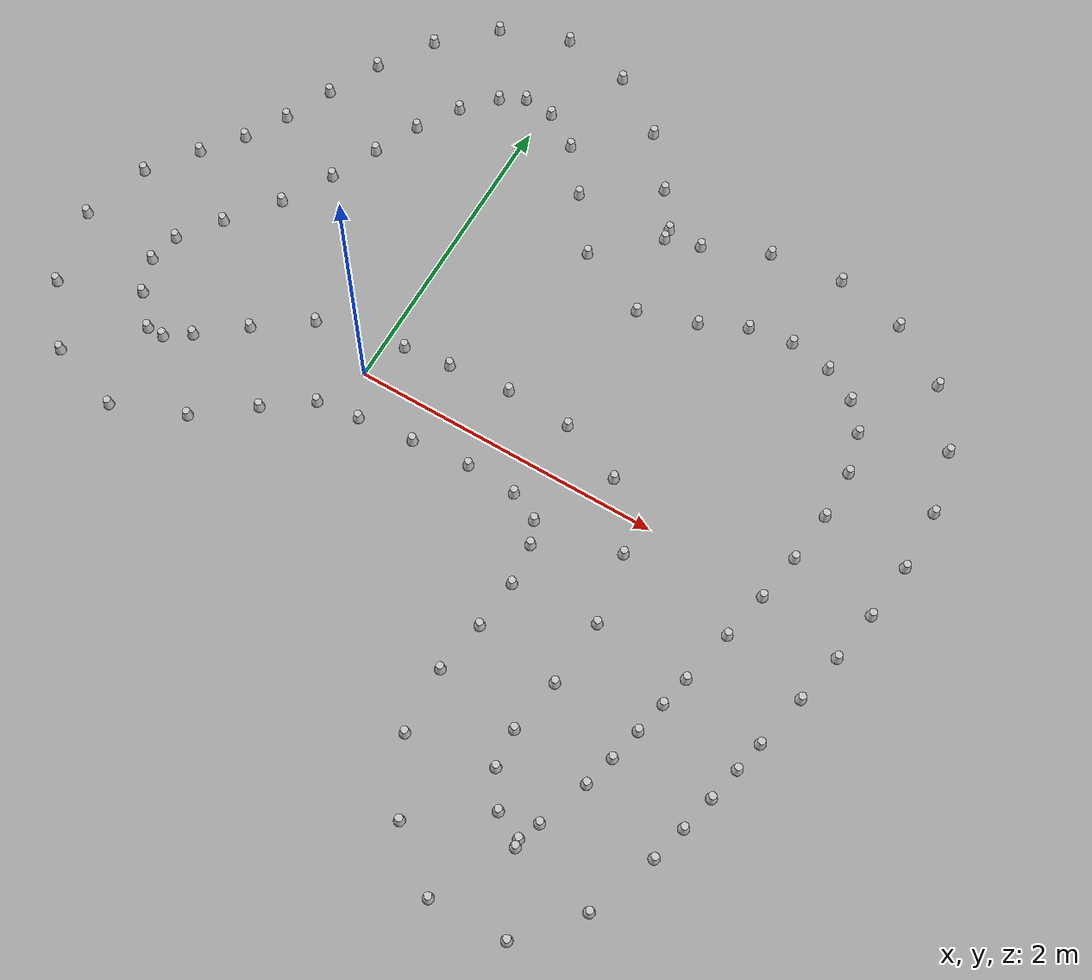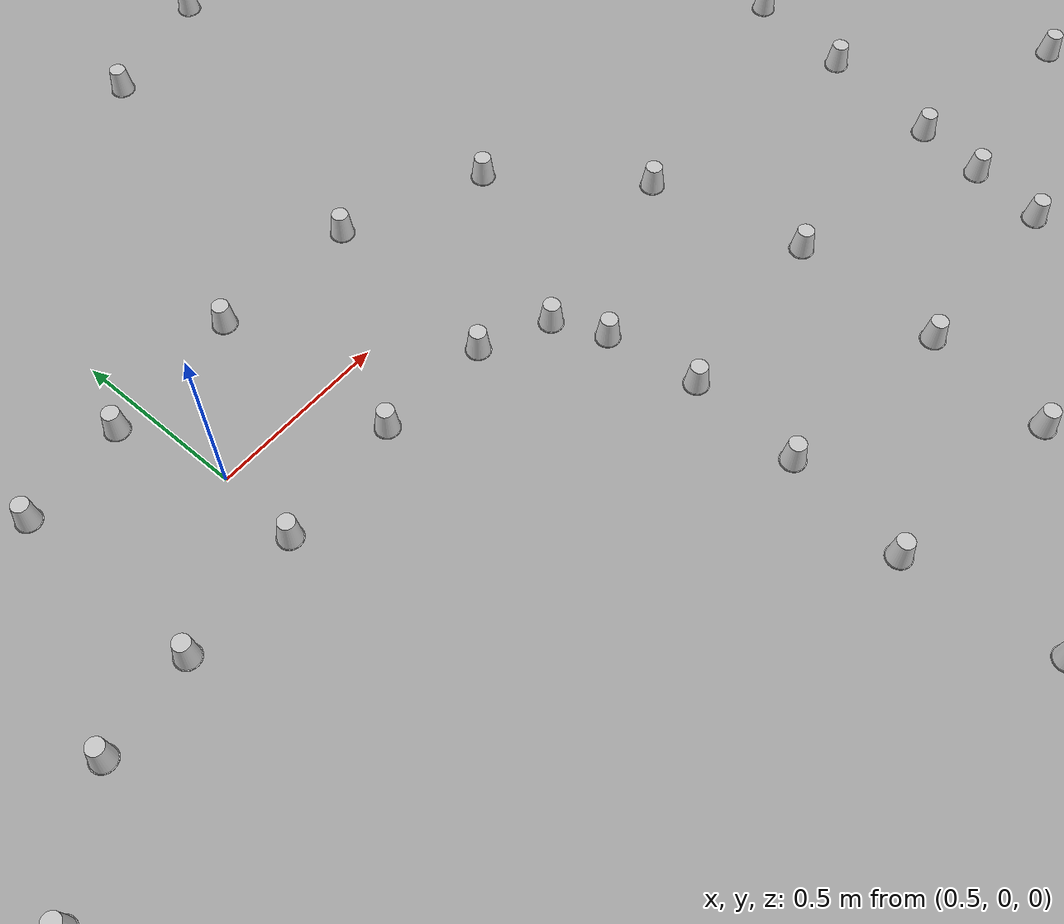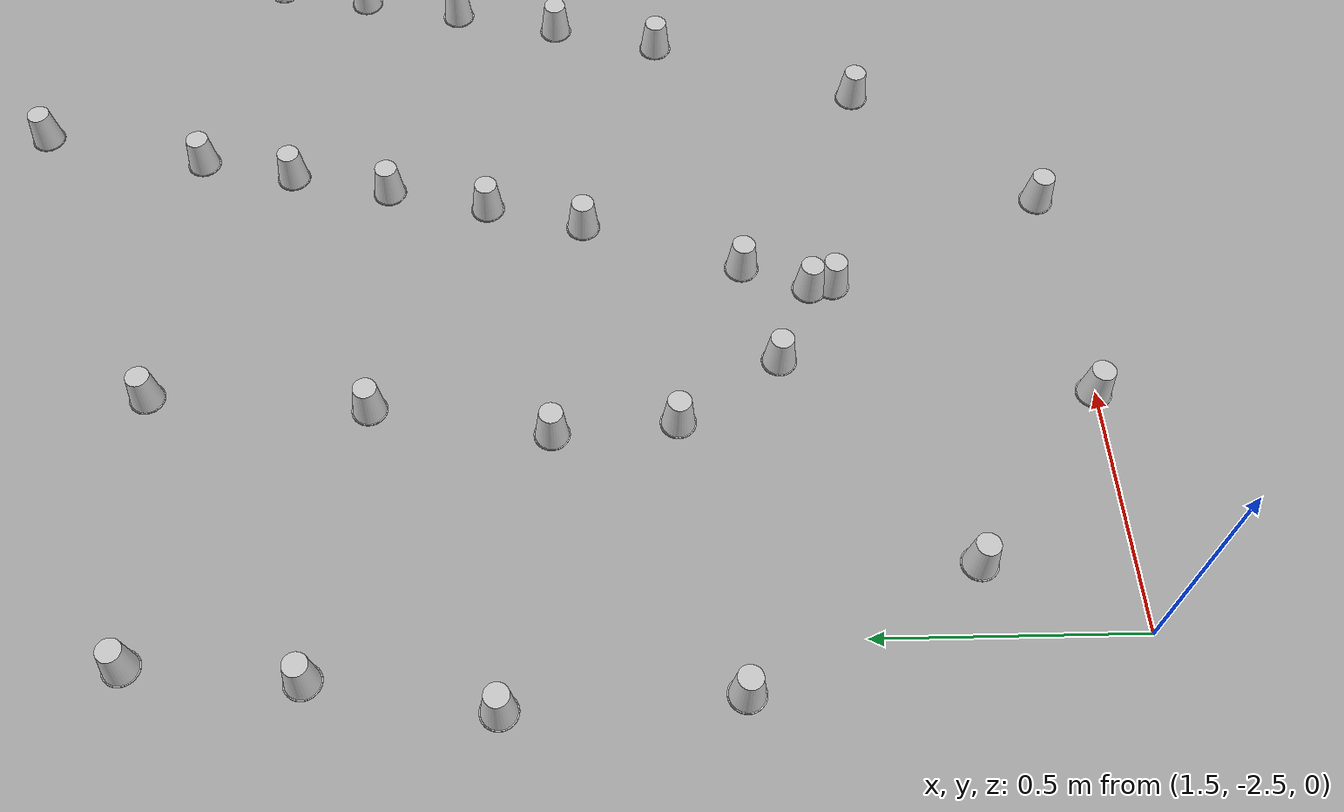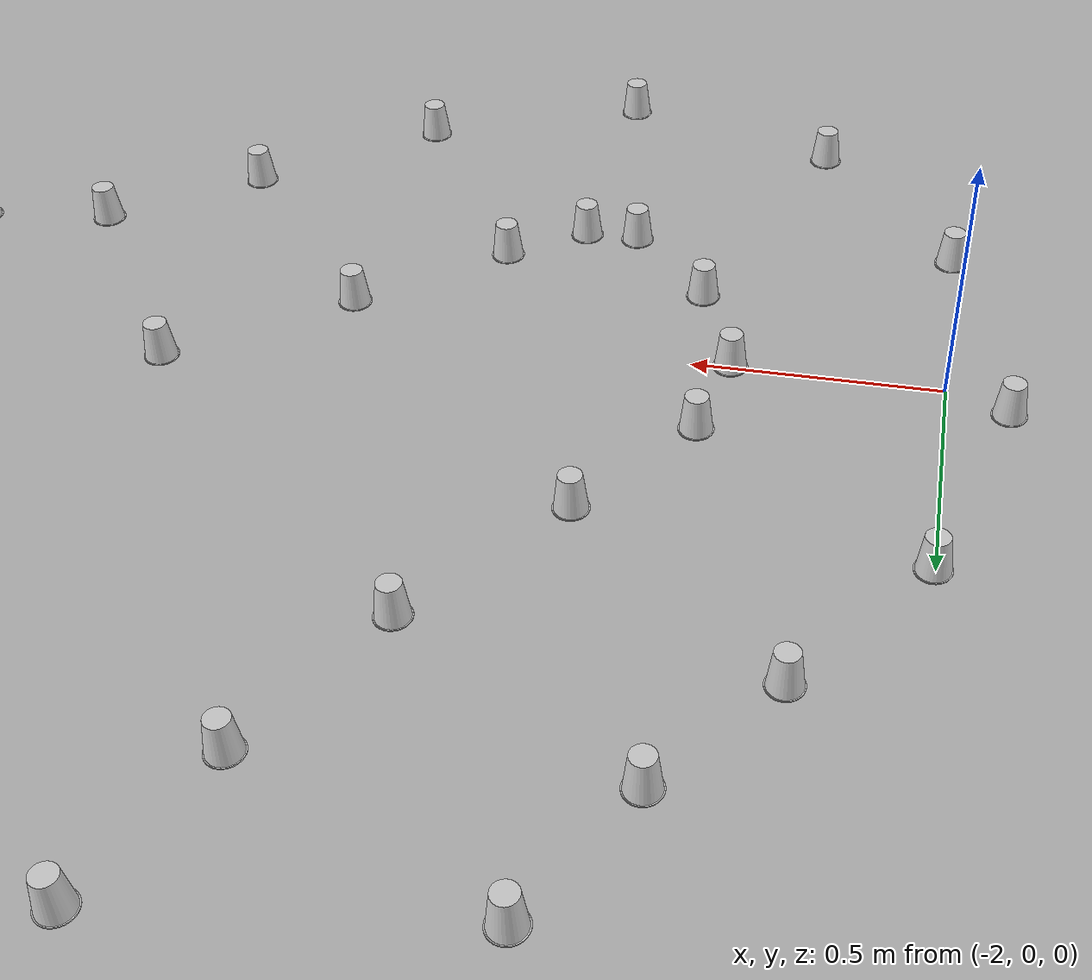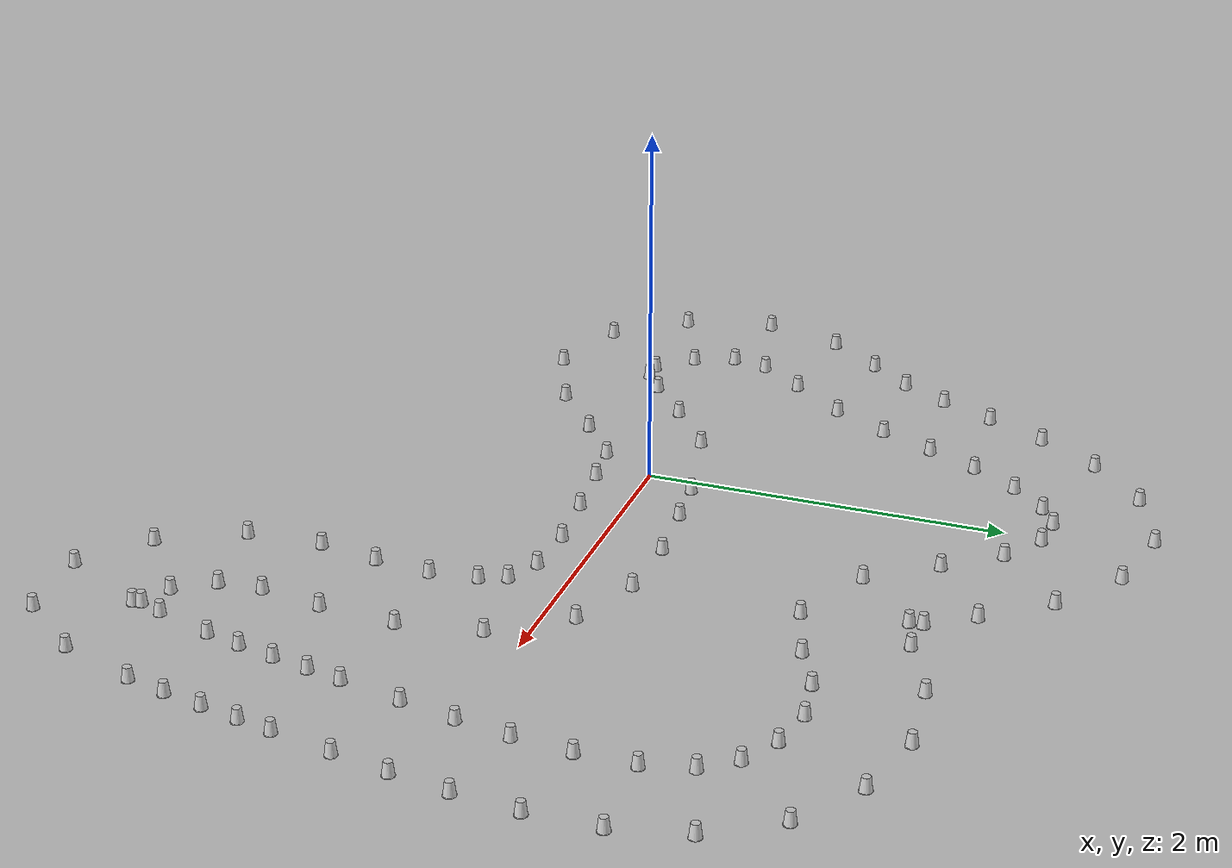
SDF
<?xml version='1.0' encoding='UTF-8'?>
<sdf version="1.4">
  <model name="some track">
    <include>
      <uri>model://cone_yellow</uri>
      <pose>0.1318042210819997 -0.2720911782986568 0 0 0 0</pose>
      <name>cone_right_0</name>
    </include>
    <include>
      <uri>model://cone_yellow</uri>
      <pose>0.49213341630767626 -0.23205659438229442 0 0 0 0</pose>
      <name>cone_right_1</name>
    </include>
    <include>
      <uri>model://cone_yellow</uri>
      <pose>0.8655149388263461 -0.19640116574429842 0 0 0 0</pose>
      <name>cone_right_2</name>
    </include>
    <include>
      <uri>model://cone_yellow</uri>
      <pose>1.1923179738679484 -0.21269540130722206 0 0 0 0</pose>
      <name>cone_right_3</name>
    </include>
    <include>
      <uri>model://cone_yellow</uri>
      <pose>1.3826189321913542 -0.30106510228389327 0 0 0 0</pose>
      <name>cone_right_4</name>
    </include>
    <include>
      <uri>model://cone_yellow</uri>
      <pose>1.4417368649751494 -0.44433717216045443 0 0 0 0</pose>
      <name>cone_right_5</name>
    </include>
    <include>
      <uri>model://cone_yellow</uri>
      <pose>1.4712281439474466 -0.7080926977826334 0 0 0 0</pose>
      <name>cone_right_6</name>
    </include>
    <include>
      <uri>model://cone_yellow</uri>
      <pose>1.4406192656695422 -1.0232461811653042 0 0 0 0</pose>
      <name>cone_right_7</name>
    </include>
    <include>
      <uri>model://cone_yellow</uri>
      <pose>1.3814540638735637 -1.3607355756623982 0 0 0 0</pose>
      <name>cone_right_8</name>
    </include>
    <include>
      <uri>model://cone_yellow</uri>
      <pose>1.4041618865034695 -1.7821163466159342 0 0 0 0</pose>
      <name>cone_right_9</name>
    </include>
    <include>
      <uri>model://cone_yellow</uri>
      <pose>1.6403589752112835 -2.2172159137455134 0 0 0 0</pose>
      <name>cone_right_10</name>
    </include>
    <include>
      <uri>model://cone_yellow</uri>
      <pose>1.9993226758221057 -2.4957548860784344 0 0 0 0</pose>
      <name>cone_right_11</name>
    </include>
    <include>
      <uri>model://cone_yellow</uri>
      <pose>2.4815303838794556 -2.4709057078714576 0 0 0 0</pose>
      <name>cone_right_12</name>
    </include>
    <include>
      <uri>model://cone_yellow</uri>
      <pose>2.7891188745378632 -2.1123374576400265 0 0 0 0</pose>
      <name>cone_right_13</name>
    </include>
    <include>
      <uri>model://cone_yellow</uri>
      <pose>2.952258020442661 -1.6790744807048517 0 0 0 0</pose>
      <name>cone_right_14</name>
    </include>
    <include>
      <uri>model://cone_yellow</uri>
      <pose>3.013284998364284 -1.450925985301922 0 0 0 0</pose>
      <name>cone_right_15</name>
    </include>
    <include>
      <uri>model://cone_yellow</uri>
      <pose>3.066219936649028 -1.2243517620697397 0 0 0 0</pose>
      <name>cone_right_16</name>
    </include>
    <include>
      <uri>model://cone_yellow</uri>
      <pose>3.1133810072825407 -1.0080536318819013 0 0 0 0</pose>
      <name>cone_right_17</name>
    </include>
    <include>
      <uri>model://cone_yellow</uri>
      <pose>3.1565067720779965 -0.8109077236249634 0 0 0 0</pose>
      <name>cone_right_18</name>
    </include>
    <include>
      <uri>model://cone_yellow</uri>
      <pose>3.2346585507701175 -0.46302666436131357 0 0 0 0</pose>
      <name>cone_right_19</name>
    </include>
    <include>
      <uri>model://cone_yellow</uri>
      <pose>3.302915990251798 -0.14080839211843438 0 0 0 0</pose>
      <name>cone_right_20</name>
    </include>
    <include>
      <uri>model://cone_yellow</uri>
      <pose>3.359806303195936 0.18990826171436012 0 0 0 0</pose>
      <name>cone_right_21</name>
    </include>
    <include>
      <uri>model://cone_yellow</uri>
      <pose>3.4001997077136963 0.5563875371094072 0 0 0 0</pose>
      <name>cone_right_22</name>
    </include>
    <include>
      <uri>model://cone_yellow</uri>
      <pose>3.396944459604496 0.9545162096614187 0 0 0 0</pose>
      <name>cone_right_23</name>
    </include>
    <include>
      <uri>model://cone_yellow</uri>
      <pose>3.303798494751522 1.358020572352114 0 0 0 0</pose>
      <name>cone_right_24</name>
    </include>
    <include>
      <uri>model://cone_yellow</uri>
      <pose>3.0589742326439975 1.7270412332411569 0 0 0 0</pose>
      <name>cone_right_25</name>
    </include>
    <include>
      <uri>model://cone_yellow</uri>
      <pose>2.6770960757367375 1.9745924008213374 0 0 0 0</pose>
      <name>cone_right_26</name>
    </include>
    <include>
      <uri>model://cone_yellow</uri>
      <pose>2.229425481420137 2.075372244587162 0 0 0 0</pose>
      <name>cone_right_27</name>
    </include>
    <include>
      <uri>model://cone_yellow</uri>
      <pose>1.7605867452651376 2.0195905382325554 0 0 0 0</pose>
      <name>cone_right_28</name>
    </include>
    <include>
      <uri>model://cone_yellow</uri>
      <pose>1.3518379745605231 1.8407274097566495 0 0 0 0</pose>
      <name>cone_right_29</name>
    </include>
    <include>
      <uri>model://cone_yellow</uri>
      <pose>1.1292335439878334 1.7725178836256357 0 0 0 0</pose>
      <name>cone_right_30</name>
    </include>
    <include>
      <uri>model://cone_yellow</uri>
      <pose>1.1220596500226714 1.8454963012502732 0 0 0 0</pose>
      <name>cone_right_31</name>
    </include>
    <include>
      <uri>model://cone_yellow</uri>
      <pose>0.9562453316260524 2.087106285254423 0 0 0 0</pose>
      <name>cone_right_32</name>
    </include>
    <include>
      <uri>model://cone_yellow</uri>
      <pose>0.6905361383811173 2.425189822648115 0 0 0 0</pose>
      <name>cone_right_33</name>
    </include>
    <include>
      <uri>model://cone_yellow</uri>
      <pose>0.3099918816330173 2.6933473752547332 0 0 0 0</pose>
      <name>cone_right_34</name>
    </include>
    <include>
      <uri>model://cone_yellow</uri>
      <pose>-0.1414672904282558 2.7793197167261074 0 0 0 0</pose>
      <name>cone_right_35</name>
    </include>
    <include>
      <uri>model://cone_yellow</uri>
      <pose>-0.5869111655595489 2.6134704903448425 0 0 0 0</pose>
      <name>cone_right_36</name>
    </include>
    <include>
      <uri>model://cone_yellow</uri>
      <pose>-0.9089892222553223 2.301167128740909 0 0 0 0</pose>
      <name>cone_right_37</name>
    </include>
    <include>
      <uri>model://cone_yellow</uri>
      <pose>-1.1342641448027013 1.9532788426767473 0 0 0 0</pose>
      <name>cone_right_38</name>
    </include>
    <include>
      <uri>model://cone_yellow</uri>
      <pose>-1.2950266599827742 1.616891172145652 0 0 0 0</pose>
      <name>cone_right_39</name>
    </include>
    <include>
      <uri>model://cone_yellow</uri>
      <pose>-1.431094999370172 1.3106105894916875 0 0 0 0</pose>
      <name>cone_right_40</name>
    </include>
    <include>
      <uri>model://cone_yellow</uri>
      <pose>-1.5787126496197668 1.0438495049224121 0 0 0 0</pose>
      <name>cone_right_41</name>
    </include>
    <include>
      <uri>model://cone_yellow</uri>
      <pose>-1.7695205782840613 0.8030300497410474 0 0 0 0</pose>
      <name>cone_right_42</name>
    </include>
    <include>
      <uri>model://cone_yellow</uri>
      <pose>-1.994952177397351 0.49825001884611764 0 0 0 0</pose>
      <name>cone_right_43</name>
    </include>
    <include>
      <uri>model://cone_yellow</uri>
      <pose>-2.1233698866427346 0.0526034891694251 0 0 0 0</pose>
      <name>cone_right_44</name>
    </include>
    <include>
      <uri>model://cone_yellow</uri>
      <pose>-1.999103310059497 -0.4450442116245683 0 0 0 0</pose>
      <name>cone_right_45</name>
    </include>
    <include>
      <uri>model://cone_yellow</uri>
      <pose>-1.6972931234866484 -0.822519008088469 0 0 0 0</pose>
      <name>cone_right_46</name>
    </include>
    <include>
      <uri>model://cone_yellow</uri>
      <pose>-1.224115966604469 -0.9720158713188081 0 0 0 0</pose>
      <name>cone_right_47</name>
    </include>
    <include>
      <uri>model://cone_yellow</uri>
      <pose>-0.7687606709031947 -0.787795672193593 0 0 0 0</pose>
      <name>cone_right_48</name>
    </include>
    <include>
      <uri>model://cone_yellow</uri>
      <pose>-0.4266637081996942 -0.517431298952603 0 0 0 0</pose>
      <name>cone_right_49</name>
    </include>
    <include>
      <uri>model://cone_yellow</uri>
      <pose>-0.14311232007840927 -0.3089257646391449 0 0 0 0</pose>
      <name>cone_right_50</name>
    </include>
    <include>
      <uri>model://cone_blue</uri>
      <pose>0.11937622656107447 0.277768390093299 0 0 0 0</pose>
      <name>cone_left_0</name>
    </include>
    <include>
      <uri>model://cone_blue</uri>
      <pose>0.42379198078753366 0.3136809324481832 0 0 0 0</pose>
      <name>cone_left_1</name>
    </include>
    <include>
      <uri>model://cone_blue</uri>
      <pose>0.8233656403839511 0.35198139838480835 0 0 0 0</pose>
      <name>cone_left_2</name>
    </include>
    <include>
      <uri>model://cone_blue</uri>
      <pose>1.2477658126503497 0.334502494498638 0 0 0 0</pose>
      <name>cone_left_3</name>
    </include>
    <include>
      <uri>model://cone_blue</uri>
      <pose>1.6569538793578218 0.17563221967540996 0 0 0 0</pose>
      <name>cone_left_4</name>
    </include>
    <include>
      <uri>model://cone_blue</uri>
      <pose>1.9408379991191511 -0.21325697418544107 0 0 0 0</pose>
      <name>cone_left_5</name>
    </include>
    <include>
      <uri>model://cone_blue</uri>
      <pose>2.019603480874534 -0.6658494752480861 0 0 0 0</pose>
      <name>cone_left_6</name>
    </include>
    <include>
      <uri>model://cone_blue</uri>
      <pose>1.985627540649769 -1.0971784488369891 0 0 0 0</pose>
      <name>cone_left_7</name>
    </include>
    <include>
      <uri>model://cone_blue</uri>
      <pose>1.9245560586160984 -1.447570034874626 0 0 0 0</pose>
      <name>cone_left_8</name>
    </include>
    <include>
      <uri>model://cone_blue</uri>
      <pose>1.9461294162764724 -1.6884616795045242 0 0 0 0</pose>
      <name>cone_left_9</name>
    </include>
    <include>
      <uri>model://cone_blue</uri>
      <pose>2.0844604848934125 -1.8927565956514663 0 0 0 0</pose>
      <name>cone_left_10</name>
    </include>
    <include>
      <uri>model://cone_blue</uri>
      <pose>2.2667514510744 -2.015149174328087 0 0 0 0</pose>
      <name>cone_left_11</name>
    </include>
    <include>
      <uri>model://cone_blue</uri>
      <pose>2.2587770181931743 -1.9680330221194533 0 0 0 0</pose>
      <name>cone_left_12</name>
    </include>
    <include>
      <uri>model://cone_blue</uri>
      <pose>2.31461798679296 -1.8342207419803982 0 0 0 0</pose>
      <name>cone_left_13</name>
    </include>
    <include>
      <uri>model://cone_blue</uri>
      <pose>2.428733786143751 -1.510485109445155 0 0 0 0</pose>
      <name>cone_left_14</name>
    </include>
    <include>
      <uri>model://cone_blue</uri>
      <pose>2.4817438492782973 -1.3096319414488677 0 0 0 0</pose>
      <name>cone_left_15</name>
    </include>
    <include>
      <uri>model://cone_blue</uri>
      <pose>2.5305723369642914 -1.0995252867050165 0 0 0 0</pose>
      <name>cone_left_16</name>
    </include>
    <include>
      <uri>model://cone_blue</uri>
      <pose>2.5759910816878286 -0.8909550927393908 0 0 0 0</pose>
      <name>cone_left_17</name>
    </include>
    <include>
      <uri>model://cone_blue</uri>
      <pose>2.619211765482781 -0.6933744266923617 0 0 0 0</pose>
      <name>cone_left_18</name>
    </include>
    <include>
      <uri>model://cone_blue</uri>
      <pose>2.698056743145943 -0.3423680548281832 0 0 0 0</pose>
      <name>cone_left_19</name>
    </include>
    <include>
      <uri>model://cone_blue</uri>
      <pose>2.7641092666669613 -0.030412220899622686 0 0 0 0</pose>
      <name>cone_left_20</name>
    </include>
    <include>
      <uri>model://cone_blue</uri>
      <pose>2.81664034999245 0.27634174643266113 0 0 0 0</pose>
      <name>cone_left_21</name>
    </include>
    <include>
      <uri>model://cone_blue</uri>
      <pose>2.85239532696325 0.6054829587963625 0 0 0 0</pose>
      <name>cone_left_22</name>
    </include>
    <include>
      <uri>model://cone_blue</uri>
      <pose>2.8477015696305044 0.925667504092227 0 0 0 0</pose>
      <name>cone_left_23</name>
    </include>
    <include>
      <uri>model://cone_blue</uri>
      <pose>2.7801576838338926 1.1897936388916035 0 0 0 0</pose>
      <name>cone_left_24</name>
    </include>
    <include>
      <uri>model://cone_blue</uri>
      <pose>2.6451476231846183 1.3647602134466403 0 0 0 0</pose>
      <name>cone_left_25</name>
    </include>
    <include>
      <uri>model://cone_blue</uri>
      <pose>2.4333063627826155 1.4815745757300465 0 0 0 0</pose>
      <name>cone_left_26</name>
    </include>
    <include>
      <uri>model://cone_blue</uri>
      <pose>2.162568917215253 1.5294508218322762 0 0 0 0</pose>
      <name>cone_left_27</name>
    </include>
    <include>
      <uri>model://cone_blue</uri>
      <pose>1.882282635083298 1.4832230239278892 0 0 0 0</pose>
      <name>cone_left_28</name>
    </include>
    <include>
      <uri>model://cone_blue</uri>
      <pose>1.5961427999512083 1.3479646348935044 0 0 0 0</pose>
      <name>cone_left_29</name>
    </include>
    <include>
      <uri>model://cone_blue</uri>
      <pose>1.2259263700609362 1.2310841412471276 0 0 0 0</pose>
      <name>cone_left_30</name>
    </include>
    <include>
      <uri>model://cone_blue</uri>
      <pose>0.761771459962094 1.4299335260852286 0 0 0 0</pose>
      <name>cone_left_31</name>
    </include>
    <include>
      <uri>model://cone_blue</uri>
      <pose>0.5007106070735272 1.7789048661680484 0 0 0 0</pose>
      <name>cone_left_32</name>
    </include>
    <include>
      <uri>model://cone_blue</uri>
      <pose>0.2762610294675842 2.06342175587787 0 0 0 0</pose>
      <name>cone_left_33</name>
    </include>
    <include>
      <uri>model://cone_blue</uri>
      <pose>0.04540883243091043 2.2111691819745767 0 0 0 0</pose>
      <name>cone_left_34</name>
    </include>
    <include>
      <uri>model://cone_blue</uri>
      <pose>-0.1551569083036411 2.2294901118825465 0 0 0 0</pose>
      <name>cone_left_35</name>
    </include>
    <include>
      <uri>model://cone_blue</uri>
      <pose>-0.30897763588950866 2.1388622802545063 0 0 0 0</pose>
      <name>cone_left_36</name>
    </include>
    <include>
      <uri>model://cone_blue</uri>
      <pose>-0.4932627620411033 1.9410678226075098 0 0 0 0</pose>
      <name>cone_left_37</name>
    </include>
    <include>
      <uri>model://cone_blue</uri>
      <pose>-0.6586342272759719 1.6770974139862636 0 0 0 0</pose>
      <name>cone_left_38</name>
    </include>
    <include>
      <uri>model://cone_blue</uri>
      <pose>-0.7936447534136968 1.390802287489292 0 0 0 0</pose>
      <name>cone_left_39</name>
    </include>
    <include>
      <uri>model://cone_blue</uri>
      <pose>-0.9301345311749312 1.0835894246069904 0 0 0 0</pose>
      <name>cone_left_40</name>
    </include>
    <include>
      <uri>model://cone_blue</uri>
      <pose>-1.106380407787845 0.7620654505012455 0 0 0 0</pose>
      <name>cone_left_41</name>
    </include>
    <include>
      <uri>model://cone_blue</uri>
      <pose>-1.3474675102078233 0.45036702683187624 0 0 0 0</pose>
      <name>cone_left_42</name>
    </include>
    <include>
      <uri>model://cone_blue</uri>
      <pose>-1.5372482267996497 0.19327937500107986 0 0 0 0</pose>
      <name>cone_left_43</name>
    </include>
    <include>
      <uri>model://cone_blue</uri>
      <pose>-1.5769087695995472 -0.009688143975899826 0 0 0 0</pose>
      <name>cone_left_44</name>
    </include>
    <include>
      <uri>model://cone_blue</uri>
      <pose>-1.4905620519665952 -0.23555485910924723 0 0 0 0</pose>
      <name>cone_left_45</name>
    </include>
    <include>
      <uri>model://cone_blue</uri>
      <pose>-1.3191340071046718 -0.42314990225127164 0 0 0 0</pose>
      <name>cone_left_46</name>
    </include>
    <include>
      <uri>model://cone_blue</uri>
      <pose>-1.2076472473427595 -0.4222624890773898 0 0 0 0</pose>
      <name>cone_left_47</name>
    </include>
    <include>
      <uri>model://cone_blue</uri>
      <pose>-1.0535106405795691 -0.3172455103943394 0 0 0 0</pose>
      <name>cone_left_48</name>
    </include>
    <include>
      <uri>model://cone_blue</uri>
      <pose>-0.7781892834111814 -0.094430388820919 0 0 0 0</pose>
      <name>cone_left_49</name>
    </include>
    <include>
      <uri>model://cone_blue</uri>
      <pose>-0.4498366593419396 0.1476048254677512 0 0 0 0</pose>
      <name>cone_left_50</name>
    </include>

  </model>
</sdf>

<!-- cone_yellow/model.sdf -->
<sdf version='1.4'>
  <model name="cone_yellow">
    <link name="link">
    <collision name="collision"><geometry><box><size> 0.05 0.05 0.01</size>
             </box></geometry></collision>
      <visual name="visual">
        <geometry>
          <mesh>
            <uri>model://cup.dae</uri>
            <scale>1 1 1</scale>
          </mesh>
        </geometry>
        <material>
            <script>
              <uri>model://cone_yellow/materials/scripts</uri>
              <uri>model://cone_yellow/materials/textures</uri>
              <name>cone_yellow/Image</name>
            </script>
        </material>
      </visual>
    </link>
  </model>
</sdf>

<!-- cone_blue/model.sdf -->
<sdf version='1.4'>
  <model name="cone_blue">
    <link name="link">
    <collision name="collision"><geometry><box><size> 0.05 0.05 0.01</size>
             </box></geometry></collision>
      <visual name="visual">
        <geometry>
          <mesh>
            <uri>model://cup.dae</uri>
            <scale>1 1 1</scale>
          </mesh>
        </geometry>
        <material>
            <script>
              <uri>model://cone_blue/materials/scripts</uri>
              <uri>model://cone_blue/materials/textures</uri>
              <name>cone_blue/Image</name>
            </script>
        </material>
      </visual>
    </link>
  </model>
</sdf>
